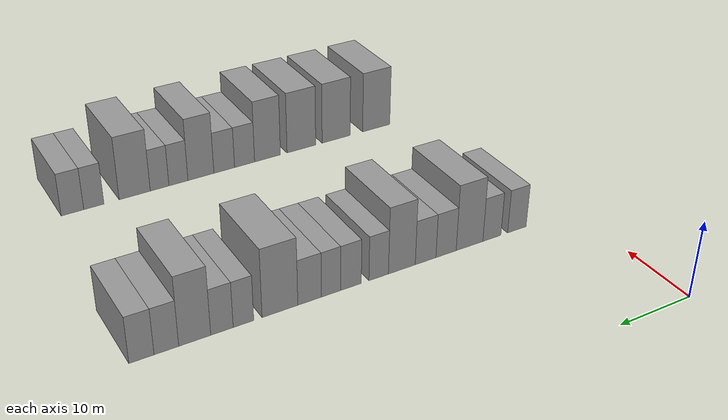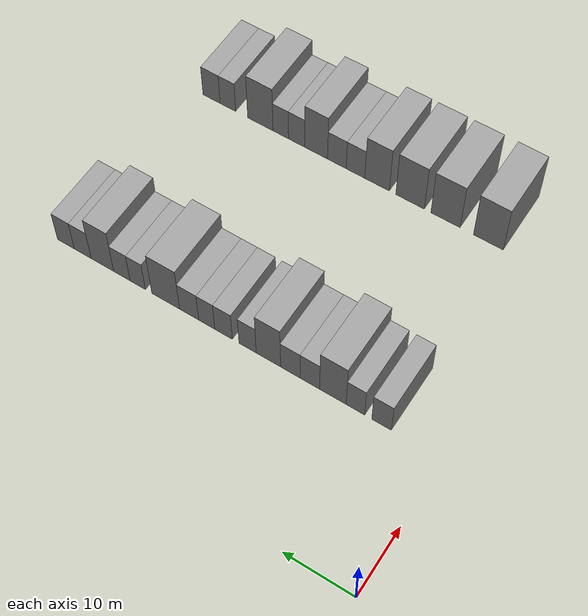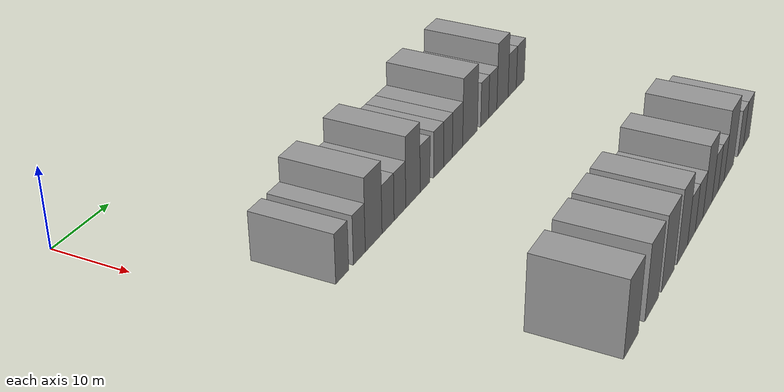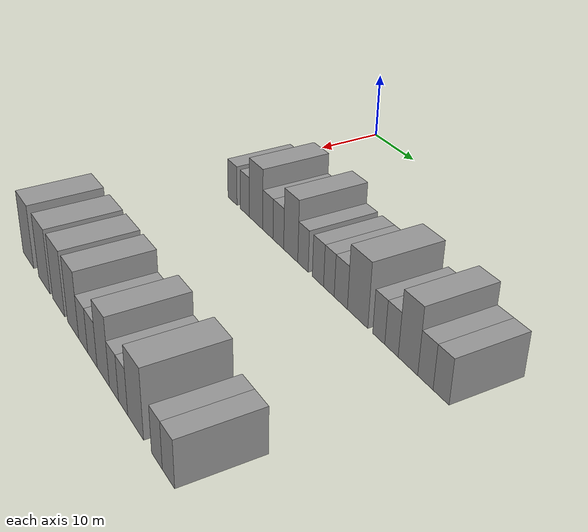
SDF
<sdf version="1.6">
 <world name="default">
  <model name="building_60">
   <static>1</static>
   <pose>25.0000 8.6152 0 0.000000 0.000000 0.000000</pose>
   <link name="link">
    <pose>0 0 3.00 0 0 0</pose>
    <collision name="collision"><geometry><box><size>10.0000 2.7752 6.0000</size></box></geometry></collision>
    <visual name="visual">
     <cast_shadows>0</cast_shadows>
     <geometry><box><size>10.0000 2.7752 6.0000</size></box></geometry>
     <material>
      <script>
       <uri>model://grey_wall/materials/scripts</uri>
       <uri>model://grey_wall/materials/textures</uri>
       <name>vrc/grey_wall</name>
      </script>
     </material>
    </visual>
   </link>
  </model>
  <model name="building_61">
   <static>1</static>
   <pose>25.0000 12.3280 0 0.000000 0.000000 0.000000</pose>
   <link name="link">
    <pose>0 0 3.00 0 0 0</pose>
    <collision name="collision"><geometry><box><size>10.0000 2.6505 6.0000</size></box></geometry></collision>
    <visual name="visual">
     <cast_shadows>0</cast_shadows>
     <geometry><box><size>10.0000 2.6505 6.0000</size></box></geometry>
     <material>
      <script>
       <uri>model://grey_wall/materials/scripts</uri>
       <uri>model://grey_wall/materials/textures</uri>
       <name>vrc/grey_wall</name>
      </script>
     </material>
    </visual>
   </link>
  </model>
  <model name="building_62">
   <static>1</static>
   <pose>25.0000 15.5733 0 0.000000 0.000000 0.000000</pose>
   <link name="link">
    <pose>0 0 4.50 0 0 0</pose>
    <collision name="collision"><geometry><box><size>10.0000 3.8400 9.0000</size></box></geometry></collision>
    <visual name="visual">
     <cast_shadows>0</cast_shadows>
     <geometry><box><size>10.0000 3.8400 9.0000</size></box></geometry>
     <material>
      <script>
       <uri>model://grey_wall/materials/scripts</uri>
       <uri>model://grey_wall/materials/textures</uri>
       <name>vrc/grey_wall</name>
      </script>
     </material>
    </visual>
   </link>
  </model>
  <model name="building_63">
   <static>1</static>
   <pose>25.0000 18.9208 0 0.000000 0.000000 0.000000</pose>
   <link name="link">
    <pose>0 0 3.00 0 0 0</pose>
    <collision name="collision"><geometry><box><size>10.0000 2.8550 6.0000</size></box></geometry></collision>
    <visual name="visual">
     <cast_shadows>0</cast_shadows>
     <geometry><box><size>10.0000 2.8550 6.0000</size></box></geometry>
     <material>
      <script>
       <uri>model://grey_wall/materials/scripts</uri>
       <uri>model://grey_wall/materials/textures</uri>
       <name>vrc/grey_wall</name>
      </script>
     </material>
    </visual>
   </link>
  </model>
  <model name="building_64">
   <static>1</static>
   <pose>25.0000 21.7757 0 0.000000 0.000000 0.000000</pose>
   <link name="link">
    <pose>0 0 3.00 0 0 0</pose>
    <collision name="collision"><geometry><box><size>10.0000 2.8547 6.0000</size></box></geometry></collision>
    <visual name="visual">
     <cast_shadows>0</cast_shadows>
     <geometry><box><size>10.0000 2.8547 6.0000</size></box></geometry>
     <material>
      <script>
       <uri>model://grey_wall/materials/scripts</uri>
       <uri>model://grey_wall/materials/textures</uri>
       <name>vrc/grey_wall</name>
      </script>
     </material>
    </visual>
   </link>
  </model>
  <model name="building_65">
   <static>1</static>
   <pose>25.0000 25.0209 0 0.000000 0.000000 0.000000</pose>
   <link name="link">
    <pose>0 0 4.50 0 0 0</pose>
    <collision name="collision"><geometry><box><size>10.0000 3.6357 9.0000</size></box></geometry></collision>
    <visual name="visual">
     <cast_shadows>0</cast_shadows>
     <geometry><box><size>10.0000 3.6357 9.0000</size></box></geometry>
     <material>
      <script>
       <uri>model://grey_wall/materials/scripts</uri>
       <uri>model://grey_wall/materials/textures</uri>
       <name>vrc/grey_wall</name>
      </script>
     </material>
    </visual>
   </link>
  </model>
  <model name="building_66">
   <static>1</static>
   <pose>25.0000 28.1320 0 0.000000 0.000000 0.000000</pose>
   <link name="link">
    <pose>0 0 3.00 0 0 0</pose>
    <collision name="collision"><geometry><box><size>10.0000 2.5865 6.0000</size></box></geometry></collision>
    <visual name="visual">
     <cast_shadows>0</cast_shadows>
     <geometry><box><size>10.0000 2.5865 6.0000</size></box></geometry>
     <material>
      <script>
       <uri>model://grey_wall/materials/scripts</uri>
       <uri>model://grey_wall/materials/textures</uri>
       <name>vrc/grey_wall</name>
      </script>
     </material>
    </visual>
   </link>
  </model>
  <model name="building_67">
   <static>1</static>
   <pose>25.0000 31.7616 0 0.000000 0.000000 0.000000</pose>
   <link name="link">
    <pose>0 0 3.00 0 0 0</pose>
    <collision name="collision"><geometry><box><size>10.0000 2.6728 6.0000</size></box></geometry></collision>
    <visual name="visual">
     <cast_shadows>0</cast_shadows>
     <geometry><box><size>10.0000 2.6728 6.0000</size></box></geometry>
     <material>
      <script>
       <uri>model://grey_wall/materials/scripts</uri>
       <uri>model://grey_wall/materials/textures</uri>
       <name>vrc/grey_wall</name>
      </script>
     </material>
    </visual>
   </link>
  </model>
  <model name="building_68">
   <static>1</static>
   <pose>25.0000 34.3246 0 0.000000 0.000000 0.000000</pose>
   <link name="link">
    <pose>0 0 3.00 0 0 0</pose>
    <collision name="collision"><geometry><box><size>10.0000 2.4531 6.0000</size></box></geometry></collision>
    <visual name="visual">
     <cast_shadows>0</cast_shadows>
     <geometry><box><size>10.0000 2.4531 6.0000</size></box></geometry>
     <material>
      <script>
       <uri>model://grey_wall/materials/scripts</uri>
       <uri>model://grey_wall/materials/textures</uri>
       <name>vrc/grey_wall</name>
      </script>
     </material>
    </visual>
   </link>
  </model>
  <model name="building_69">
   <static>1</static>
   <pose>25.0000 37.0264 0 0.000000 0.000000 0.000000</pose>
   <link name="link">
    <pose>0 0 3.00 0 0 0</pose>
    <collision name="collision"><geometry><box><size>10.0000 2.9506 6.0000</size></box></geometry></collision>
    <visual name="visual">
     <cast_shadows>0</cast_shadows>
     <geometry><box><size>10.0000 2.9506 6.0000</size></box></geometry>
     <material>
      <script>
       <uri>model://grey_wall/materials/scripts</uri>
       <uri>model://grey_wall/materials/textures</uri>
       <name>vrc/grey_wall</name>
      </script>
     </material>
    </visual>
   </link>
  </model>
  <model name="building_70">
   <static>1</static>
   <pose>25.0000 40.6774 0 0.000000 0.000000 0.000000</pose>
   <link name="link">
    <pose>0 0 4.50 0 0 0</pose>
    <collision name="collision"><geometry><box><size>10.0000 4.3513 9.0000</size></box></geometry></collision>
    <visual name="visual">
     <cast_shadows>0</cast_shadows>
     <geometry><box><size>10.0000 4.3513 9.0000</size></box></geometry>
     <material>
      <script>
       <uri>model://grey_wall/materials/scripts</uri>
       <uri>model://grey_wall/materials/textures</uri>
       <name>vrc/grey_wall</name>
      </script>
     </material>
    </visual>
   </link>
  </model>
  <model name="building_71">
   <static>1</static>
   <pose>25.0000 45.0658 0 0.000000 0.000000 0.000000</pose>
   <link name="link">
    <pose>0 0 3.00 0 0 0</pose>
    <collision name="collision"><geometry><box><size>10.0000 2.4256 6.0000</size></box></geometry></collision>
    <visual name="visual">
     <cast_shadows>0</cast_shadows>
     <geometry><box><size>10.0000 2.4256 6.0000</size></box></geometry>
     <material>
      <script>
       <uri>model://grey_wall/materials/scripts</uri>
       <uri>model://grey_wall/materials/textures</uri>
       <name>vrc/grey_wall</name>
      </script>
     </material>
    </visual>
   </link>
  </model>
  <model name="building_72">
   <static>1</static>
   <pose>25.0000 47.5848 0 0.000000 0.000000 0.000000</pose>
   <link name="link">
    <pose>0 0 3.00 0 0 0</pose>
    <collision name="collision"><geometry><box><size>10.0000 2.6124 6.0000</size></box></geometry></collision>
    <visual name="visual">
     <cast_shadows>0</cast_shadows>
     <geometry><box><size>10.0000 2.6124 6.0000</size></box></geometry>
     <material>
      <script>
       <uri>model://grey_wall/materials/scripts</uri>
       <uri>model://grey_wall/materials/textures</uri>
       <name>vrc/grey_wall</name>
      </script>
     </material>
    </visual>
   </link>
  </model>
  <model name="building_73">
   <static>1</static>
   <pose>25.0000 50.7102 0 0.000000 0.000000 0.000000</pose>
   <link name="link">
    <pose>0 0 4.50 0 0 0</pose>
    <collision name="collision"><geometry><box><size>10.0000 3.6385 9.0000</size></box></geometry></collision>
    <visual name="visual">
     <cast_shadows>0</cast_shadows>
     <geometry><box><size>10.0000 3.6385 9.0000</size></box></geometry>
     <material>
      <script>
       <uri>model://grey_wall/materials/scripts</uri>
       <uri>model://grey_wall/materials/textures</uri>
       <name>vrc/grey_wall</name>
      </script>
     </material>
    </visual>
   </link>
  </model>
  <model name="building_74">
   <static>1</static>
   <pose>25.0000 53.8976 0 0.000000 0.000000 0.000000</pose>
   <link name="link">
    <pose>0 0 3.00 0 0 0</pose>
    <collision name="collision"><geometry><box><size>10.0000 2.7363 6.0000</size></box></geometry></collision>
    <visual name="visual">
     <cast_shadows>0</cast_shadows>
     <geometry><box><size>10.0000 2.7363 6.0000</size></box></geometry>
     <material>
      <script>
       <uri>model://grey_wall/materials/scripts</uri>
       <uri>model://grey_wall/materials/textures</uri>
       <name>vrc/grey_wall</name>
      </script>
     </material>
    </visual>
   </link>
  </model>
  <model name="building_75">
   <static>1</static>
   <pose>25.0000 56.6421 0 0.000000 0.000000 0.000000</pose>
   <link name="link">
    <pose>0 0 3.00 0 0 0</pose>
    <collision name="collision"><geometry><box><size>10.0000 2.7527 6.0000</size></box></geometry></collision>
    <visual name="visual">
     <cast_shadows>0</cast_shadows>
     <geometry><box><size>10.0000 2.7527 6.0000</size></box></geometry>
     <material>
      <script>
       <uri>model://grey_wall/materials/scripts</uri>
       <uri>model://grey_wall/materials/textures</uri>
       <name>vrc/grey_wall</name>
      </script>
     </material>
    </visual>
   </link>
  </model>
  <model name="building_173">
   <static>1</static>
   <pose>55.0000 10.3461 0 0.000000 0.000000 0.000000</pose>
   <link name="link">
    <pose>0 0 4.50 0 0 0</pose>
    <collision name="collision"><geometry><box><size>10.0000 4.4324 9.0000</size></box></geometry></collision>
    <visual name="visual">
     <cast_shadows>0</cast_shadows>
     <geometry><box><size>10.0000 4.4324 9.0000</size></box></geometry>
     <material>
      <script>
       <uri>model://grey_wall/materials/scripts</uri>
       <uri>model://grey_wall/materials/textures</uri>
       <name>vrc/grey_wall</name>
      </script>
     </material>
    </visual>
   </link>
  </model>
  <model name="building_174">
   <static>1</static>
   <pose>55.0000 16.7823 0 0.000000 0.000000 0.000000</pose>
   <link name="link">
    <pose>0 0 4.50 0 0 0</pose>
    <collision name="collision"><geometry><box><size>10.0000 4.4399 9.0000</size></box></geometry></collision>
    <visual name="visual">
     <cast_shadows>0</cast_shadows>
     <geometry><box><size>10.0000 4.4399 9.0000</size></box></geometry>
     <material>
      <script>
       <uri>model://grey_wall/materials/scripts</uri>
       <uri>model://grey_wall/materials/textures</uri>
       <name>vrc/grey_wall</name>
      </script>
     </material>
    </visual>
   </link>
  </model>
  <model name="building_175">
   <static>1</static>
   <pose>55.0000 22.1979 0 0.000000 0.000000 0.000000</pose>
   <link name="link">
    <pose>0 0 4.50 0 0 0</pose>
    <collision name="collision"><geometry><box><size>10.0000 4.3912 9.0000</size></box></geometry></collision>
    <visual name="visual">
     <cast_shadows>0</cast_shadows>
     <geometry><box><size>10.0000 4.3912 9.0000</size></box></geometry>
     <material>
      <script>
       <uri>model://grey_wall/materials/scripts</uri>
       <uri>model://grey_wall/materials/textures</uri>
       <name>vrc/grey_wall</name>
      </script>
     </material>
    </visual>
   </link>
  </model>
  <model name="building_176">
   <static>1</static>
   <pose>55.0000 27.3187 0 0.000000 0.000000 0.000000</pose>
   <link name="link">
    <pose>0 0 4.50 0 0 0</pose>
    <collision name="collision"><geometry><box><size>10.0000 3.8504 9.0000</size></box></geometry></collision>
    <visual name="visual">
     <cast_shadows>0</cast_shadows>
     <geometry><box><size>10.0000 3.8504 9.0000</size></box></geometry>
     <material>
      <script>
       <uri>model://grey_wall/materials/scripts</uri>
       <uri>model://grey_wall/materials/textures</uri>
       <name>vrc/grey_wall</name>
      </script>
     </material>
    </visual>
   </link>
  </model>
  <model name="building_177">
   <static>1</static>
   <pose>55.0000 30.7087 0 0.000000 0.000000 0.000000</pose>
   <link name="link">
    <pose>0 0 3.00 0 0 0</pose>
    <collision name="collision"><geometry><box><size>10.0000 2.9296 6.0000</size></box></geometry></collision>
    <visual name="visual">
     <cast_shadows>0</cast_shadows>
     <geometry><box><size>10.0000 2.9296 6.0000</size></box></geometry>
     <material>
      <script>
       <uri>model://grey_wall/materials/scripts</uri>
       <uri>model://grey_wall/materials/textures</uri>
       <name>vrc/grey_wall</name>
      </script>
     </material>
    </visual>
   </link>
  </model>
  <model name="building_178">
   <static>1</static>
   <pose>55.0000 33.6608 0 0.000000 0.000000 0.000000</pose>
   <link name="link">
    <pose>0 0 3.00 0 0 0</pose>
    <collision name="collision"><geometry><box><size>10.0000 2.9746 6.0000</size></box></geometry></collision>
    <visual name="visual">
     <cast_shadows>0</cast_shadows>
     <geometry><box><size>10.0000 2.9746 6.0000</size></box></geometry>
     <material>
      <script>
       <uri>model://grey_wall/materials/scripts</uri>
       <uri>model://grey_wall/materials/textures</uri>
       <name>vrc/grey_wall</name>
      </script>
     </material>
    </visual>
   </link>
  </model>
  <model name="building_179">
   <static>1</static>
   <pose>55.0000 36.9774 0 0.000000 0.000000 0.000000</pose>
   <link name="link">
    <pose>0 0 4.50 0 0 0</pose>
    <collision name="collision"><geometry><box><size>10.0000 3.6586 9.0000</size></box></geometry></collision>
    <visual name="visual">
     <cast_shadows>0</cast_shadows>
     <geometry><box><size>10.0000 3.6586 9.0000</size></box></geometry>
     <material>
      <script>
       <uri>model://grey_wall/materials/scripts</uri>
       <uri>model://grey_wall/materials/textures</uri>
       <name>vrc/grey_wall</name>
      </script>
     </material>
    </visual>
   </link>
  </model>
  <model name="building_180">
   <static>1</static>
   <pose>55.0000 40.1255 0 0.000000 0.000000 0.000000</pose>
   <link name="link">
    <pose>0 0 3.00 0 0 0</pose>
    <collision name="collision"><geometry><box><size>10.0000 2.6378 6.0000</size></box></geometry></collision>
    <visual name="visual">
     <cast_shadows>0</cast_shadows>
     <geometry><box><size>10.0000 2.6378 6.0000</size></box></geometry>
     <material>
      <script>
       <uri>model://grey_wall/materials/scripts</uri>
       <uri>model://grey_wall/materials/textures</uri>
       <name>vrc/grey_wall</name>
      </script>
     </material>
    </visual>
   </link>
  </model>
  <model name="building_181">
   <static>1</static>
   <pose>55.0000 42.7164 0 0.000000 0.000000 0.000000</pose>
   <link name="link">
    <pose>0 0 3.00 0 0 0</pose>
    <collision name="collision"><geometry><box><size>10.0000 2.5439 6.0000</size></box></geometry></collision>
    <visual name="visual">
     <cast_shadows>0</cast_shadows>
     <geometry><box><size>10.0000 2.5439 6.0000</size></box></geometry>
     <material>
      <script>
       <uri>model://grey_wall/materials/scripts</uri>
       <uri>model://grey_wall/materials/textures</uri>
       <name>vrc/grey_wall</name>
      </script>
     </material>
    </visual>
   </link>
  </model>
  <model name="building_182">
   <static>1</static>
   <pose>55.0000 46.0701 0 0.000000 0.000000 0.000000</pose>
   <link name="link">
    <pose>0 0 4.50 0 0 0</pose>
    <collision name="collision"><geometry><box><size>10.0000 4.1636 9.0000</size></box></geometry></collision>
    <visual name="visual">
     <cast_shadows>0</cast_shadows>
     <geometry><box><size>10.0000 4.1636 9.0000</size></box></geometry>
     <material>
      <script>
       <uri>model://grey_wall/materials/scripts</uri>
       <uri>model://grey_wall/materials/textures</uri>
       <name>vrc/grey_wall</name>
      </script>
     </material>
    </visual>
   </link>
  </model>
  <model name="building_183">
   <static>1</static>
   <pose>55.0000 51.4609 0 0.000000 0.000000 0.000000</pose>
   <link name="link">
    <pose>0 0 3.00 0 0 0</pose>
    <collision name="collision"><geometry><box><size>10.0000 2.6180 6.0000</size></box></geometry></collision>
    <visual name="visual">
     <cast_shadows>0</cast_shadows>
     <geometry><box><size>10.0000 2.6180 6.0000</size></box></geometry>
     <material>
      <script>
       <uri>model://grey_wall/materials/scripts</uri>
       <uri>model://grey_wall/materials/textures</uri>
       <name>vrc/grey_wall</name>
      </script>
     </material>
    </visual>
   </link>
  </model>
  <model name="building_184">
   <static>1</static>
   <pose>55.0000 54.2060 0 0.000000 0.000000 0.000000</pose>
   <link name="link">
    <pose>0 0 3.00 0 0 0</pose>
    <collision name="collision"><geometry><box><size>10.0000 2.8722 6.0000</size></box></geometry></collision>
    <visual name="visual">
     <cast_shadows>0</cast_shadows>
     <geometry><box><size>10.0000 2.8722 6.0000</size></box></geometry>
     <material>
      <script>
       <uri>model://grey_wall/materials/scripts</uri>
       <uri>model://grey_wall/materials/textures</uri>
       <name>vrc/grey_wall</name>
      </script>
     </material>
    </visual>
   </link>
  </model>
 </world>
</sdf>
